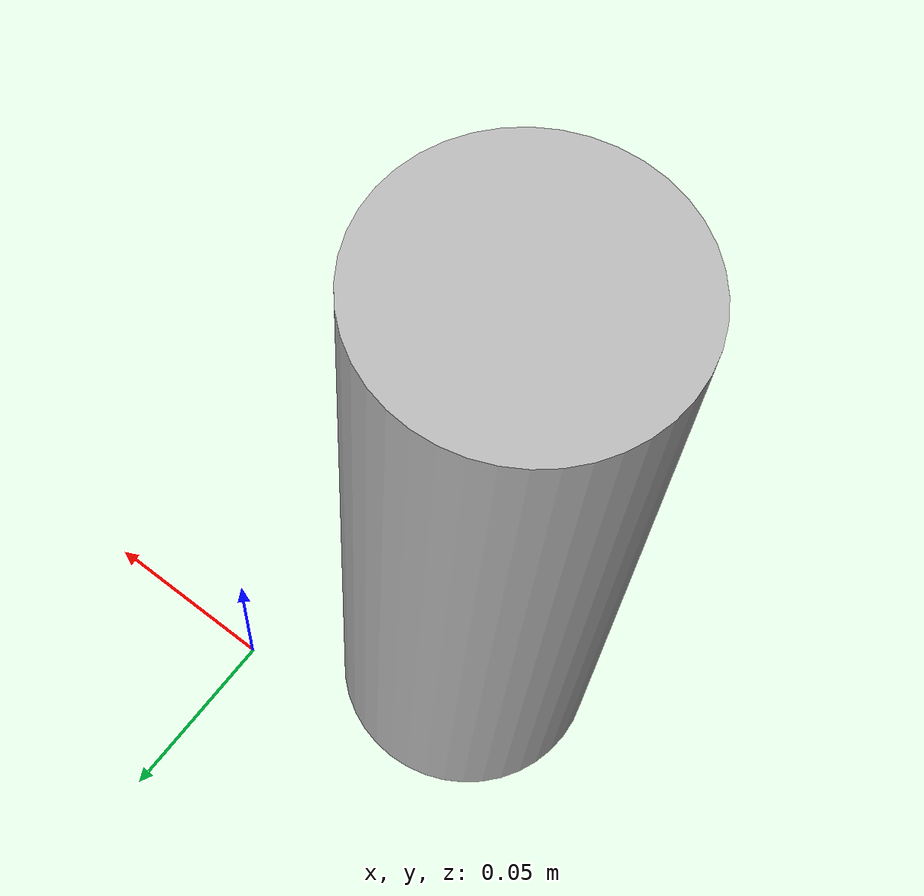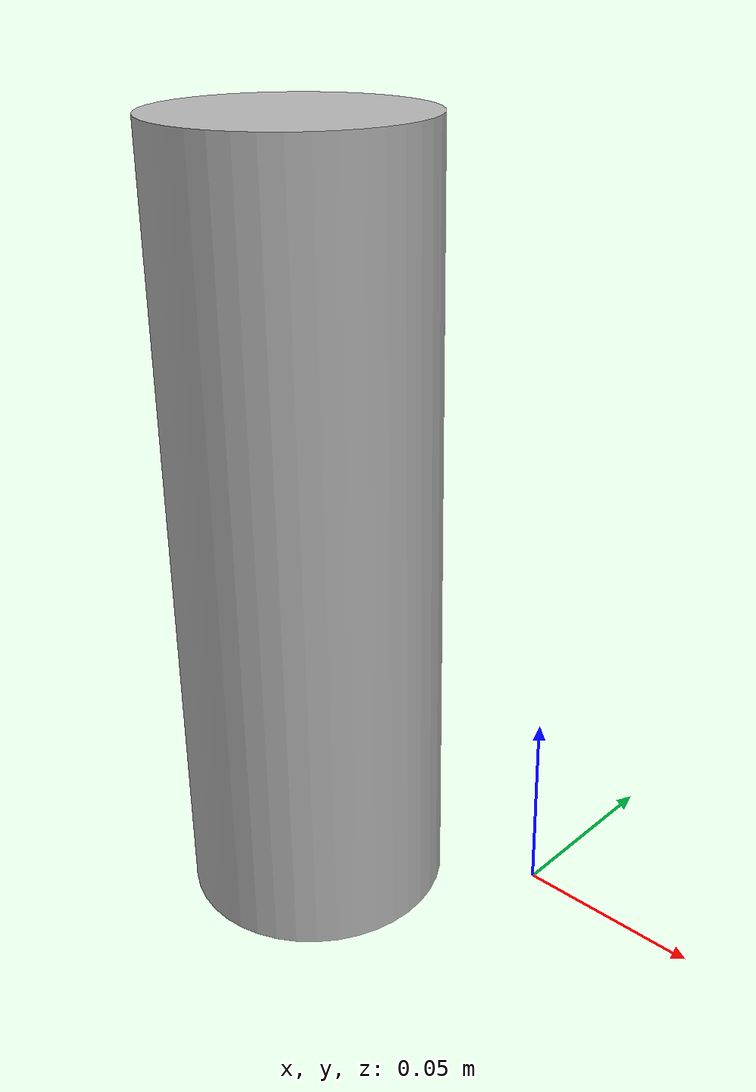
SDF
<?xml version="1.0" ?>
<sdf version="1.5">
  <model name="om">
    <static>true</static>
    <link name="link">
      <pose>-0.086 -0 0  1.570796  0 0</pose>
      <collision name="collision">
        <geometry>
          <mesh>
            <uri>/home/well/graspit/models/objects/test2_model/3.stl</uri>
            <scale>0.001 0.001 0.001</scale>
          </mesh>
        </geometry>
      </collision>
      <visual name="visual">
        <geometry>
          <mesh>
            <uri>/home/well/graspit/models/objects/test2_model/3.stl</uri>
            <scale>0.001 0.001 0.001</scale>
          </mesh>
        </geometry>
      </visual>
    </link>
  </model>
</sdf>
